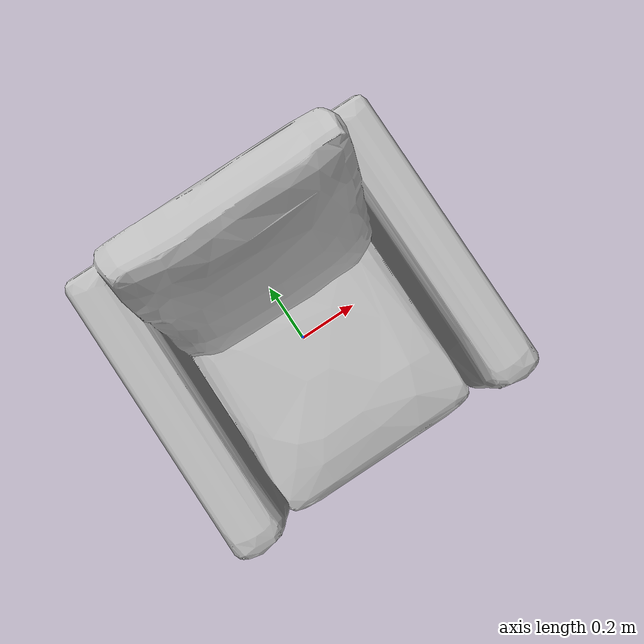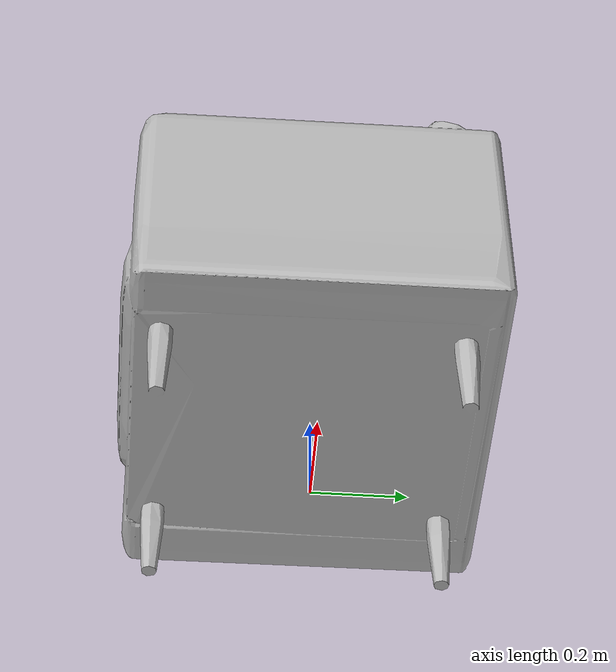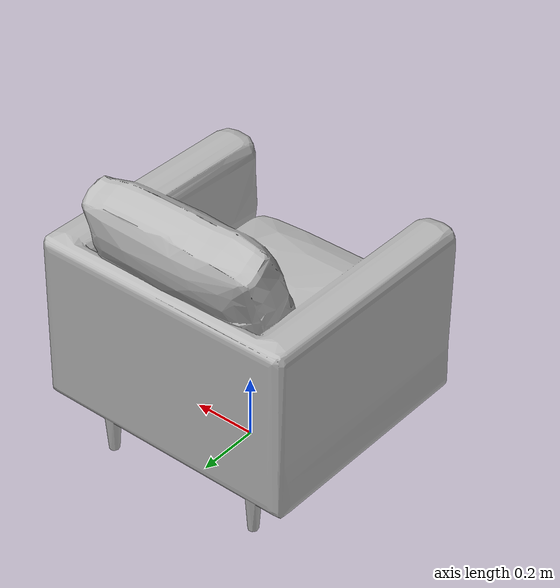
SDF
<sdf version="1.6">
	<model name="LivingRoomChairs_Ob03b8af5d78f_lod0">
		<link name="main_link">
			<visual name="visual_RootNode">
				<geometry>
					<mesh>
						<uri>model://LivingRoomChairs_Ob03b8af5d78f_lod0/meshes/visual_RootNode.dae</uri>
					</mesh>
				</geometry>
			</visual>
			<collision name="collision_RootNode_lod0_0">
				<geometry>
					<mesh>
						<uri>model://LivingRoomChairs_Ob03b8af5d78f_lod0/meshes/collision_RootNode_lod0_0.dae</uri>
					</mesh>
				</geometry>
			</collision>
		</link>
	</model>
</sdf>
